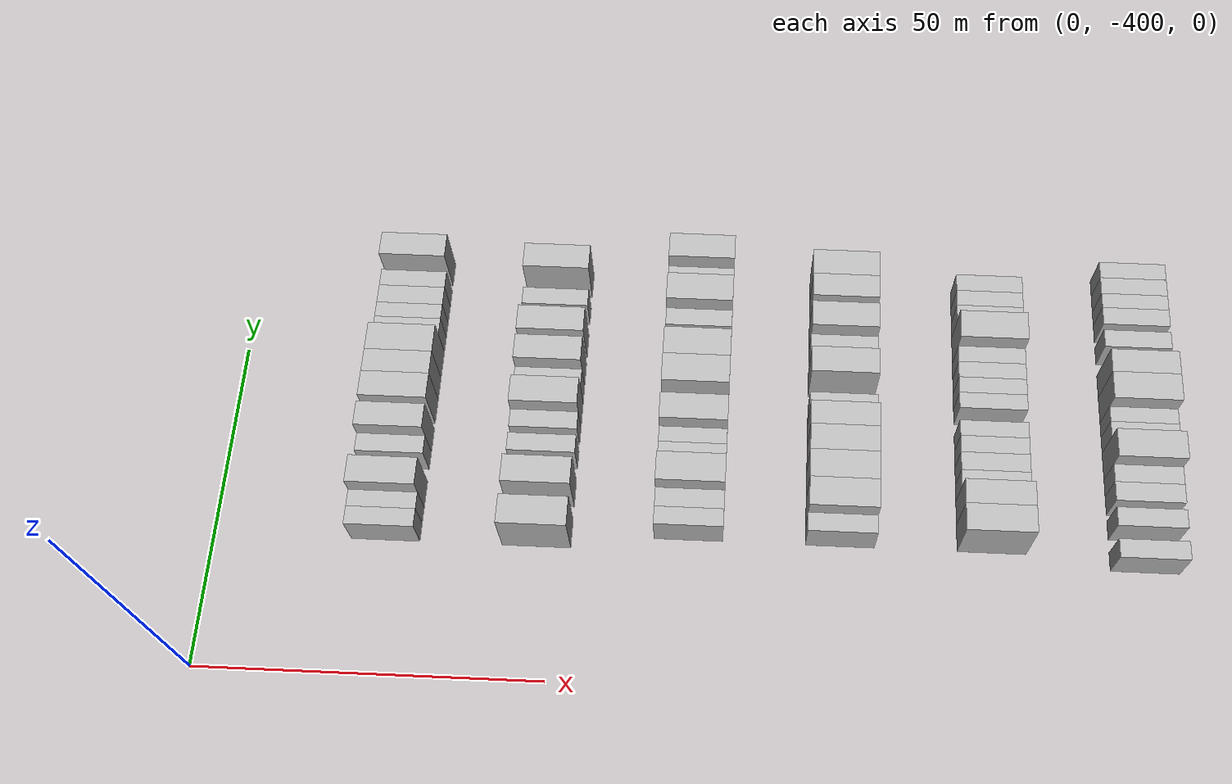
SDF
<sdf version="1.6">
 <world name="default">
  <model name="building_1">
   <static>1</static>
   <pose>25.0000 -378.6313 0 0.000000 0.000000 0.000000</pose>
   <link name="link">
    <pose>0 0 3.00 0 0 0</pose>
    <collision name="collision"><geometry><box><size>10.0000 2.7375 6.0000</size></box></geometry></collision>
    <visual name="visual">
     <cast_shadows>0</cast_shadows>
     <geometry><box><size>10.0000 2.7375 6.0000</size></box></geometry>
     <material>
      <script>
       <uri>model://HANNAS_wall/materials/scripts</uri>
       <uri>model://HANNAS_wall/materials/textures</uri>
       <name>vrc/HANNAS_wall</name>
      </script>
     </material>
    </visual>
   </link>
  </model>
  <model name="building_2">
   <static>1</static>
   <pose>25.0000 -375.9943 0 0.000000 0.000000 0.000000</pose>
   <link name="link">
    <pose>0 0 3.00 0 0 0</pose>
    <collision name="collision"><geometry><box><size>10.0000 2.5364 6.0000</size></box></geometry></collision>
    <visual name="visual">
     <cast_shadows>0</cast_shadows>
     <geometry><box><size>10.0000 2.5364 6.0000</size></box></geometry>
     <material>
      <script>
       <uri>model://HANNAS_wall/materials/scripts</uri>
       <uri>model://HANNAS_wall/materials/textures</uri>
       <name>vrc/HANNAS_wall</name>
      </script>
     </material>
    </visual>
   </link>
  </model>
  <model name="building_3">
   <static>1</static>
   <pose>25.0000 -372.6665 0 0.000000 0.000000 0.000000</pose>
   <link name="link">
    <pose>0 0 4.50 0 0 0</pose>
    <collision name="collision"><geometry><box><size>10.0000 4.1193 9.0000</size></box></geometry></collision>
    <visual name="visual">
     <cast_shadows>0</cast_shadows>
     <geometry><box><size>10.0000 4.1193 9.0000</size></box></geometry>
     <material>
      <script>
       <uri>model://HANNAS_wall/materials/scripts</uri>
       <uri>model://HANNAS_wall/materials/textures</uri>
       <name>vrc/HANNAS_wall</name>
      </script>
     </material>
    </visual>
   </link>
  </model>
  <model name="building_4">
   <static>1</static>
   <pose>25.0000 -367.2124 0 0.000000 0.000000 0.000000</pose>
   <link name="link">
    <pose>0 0 3.00 0 0 0</pose>
    <collision name="collision"><geometry><box><size>10.0000 2.7888 6.0000</size></box></geometry></collision>
    <visual name="visual">
     <cast_shadows>0</cast_shadows>
     <geometry><box><size>10.0000 2.7888 6.0000</size></box></geometry>
     <material>
      <script>
       <uri>model://HANNAS_wall/materials/scripts</uri>
       <uri>model://HANNAS_wall/materials/textures</uri>
       <name>vrc/HANNAS_wall</name>
      </script>
     </material>
    </visual>
   </link>
  </model>
  <model name="building_5">
   <static>1</static>
   <pose>25.0000 -363.9507 0 0.000000 0.000000 0.000000</pose>
   <link name="link">
    <pose>0 0 4.50 0 0 0</pose>
    <collision name="collision"><geometry><box><size>10.0000 3.7346 9.0000</size></box></geometry></collision>
    <visual name="visual">
     <cast_shadows>0</cast_shadows>
     <geometry><box><size>10.0000 3.7346 9.0000</size></box></geometry>
     <material>
      <script>
       <uri>model://HANNAS_wall/materials/scripts</uri>
       <uri>model://HANNAS_wall/materials/textures</uri>
       <name>vrc/HANNAS_wall</name>
      </script>
     </material>
    </visual>
   </link>
  </model>
  <model name="building_6">
   <static>1</static>
   <pose>25.0000 -359.0992 0 0.000000 0.000000 0.000000</pose>
   <link name="link">
    <pose>0 0 4.50 0 0 0</pose>
    <collision name="collision"><geometry><box><size>10.0000 3.9685 9.0000</size></box></geometry></collision>
    <visual name="visual">
     <cast_shadows>0</cast_shadows>
     <geometry><box><size>10.0000 3.9685 9.0000</size></box></geometry>
     <material>
      <script>
       <uri>model://HANNAS_wall/materials/scripts</uri>
       <uri>model://HANNAS_wall/materials/textures</uri>
       <name>vrc/HANNAS_wall</name>
      </script>
     </material>
    </visual>
   </link>
  </model>
  <model name="building_7">
   <static>1</static>
   <pose>25.0000 -355.3068 0 0.000000 0.000000 0.000000</pose>
   <link name="link">
    <pose>0 0 4.50 0 0 0</pose>
    <collision name="collision"><geometry><box><size>10.0000 3.6162 9.0000</size></box></geometry></collision>
    <visual name="visual">
     <cast_shadows>0</cast_shadows>
     <geometry><box><size>10.0000 3.6162 9.0000</size></box></geometry>
     <material>
      <script>
       <uri>model://HANNAS_wall/materials/scripts</uri>
       <uri>model://HANNAS_wall/materials/textures</uri>
       <name>vrc/HANNAS_wall</name>
      </script>
     </material>
    </visual>
   </link>
  </model>
  <model name="building_8">
   <static>1</static>
   <pose>25.0000 -351.3034 0 0.000000 0.000000 0.000000</pose>
   <link name="link">
    <pose>0 0 4.50 0 0 0</pose>
    <collision name="collision"><geometry><box><size>10.0000 4.3906 9.0000</size></box></geometry></collision>
    <visual name="visual">
     <cast_shadows>0</cast_shadows>
     <geometry><box><size>10.0000 4.3906 9.0000</size></box></geometry>
     <material>
      <script>
       <uri>model://HANNAS_wall/materials/scripts</uri>
       <uri>model://HANNAS_wall/materials/textures</uri>
       <name>vrc/HANNAS_wall</name>
      </script>
     </material>
    </visual>
   </link>
  </model>
  <model name="building_9">
   <static>1</static>
   <pose>25.0000 -347.7406 0 0.000000 0.000000 0.000000</pose>
   <link name="link">
    <pose>0 0 3.00 0 0 0</pose>
    <collision name="collision"><geometry><box><size>10.0000 2.7350 6.0000</size></box></geometry></collision>
    <visual name="visual">
     <cast_shadows>0</cast_shadows>
     <geometry><box><size>10.0000 2.7350 6.0000</size></box></geometry>
     <material>
      <script>
       <uri>model://HANNAS_wall/materials/scripts</uri>
       <uri>model://HANNAS_wall/materials/textures</uri>
       <name>vrc/HANNAS_wall</name>
      </script>
     </material>
    </visual>
   </link>
  </model>
  <model name="building_10">
   <static>1</static>
   <pose>25.0000 -345.1540 0 0.000000 0.000000 0.000000</pose>
   <link name="link">
    <pose>0 0 3.00 0 0 0</pose>
    <collision name="collision"><geometry><box><size>10.0000 2.4383 6.0000</size></box></geometry></collision>
    <visual name="visual">
     <cast_shadows>0</cast_shadows>
     <geometry><box><size>10.0000 2.4383 6.0000</size></box></geometry>
     <material>
      <script>
       <uri>model://HANNAS_wall/materials/scripts</uri>
       <uri>model://HANNAS_wall/materials/textures</uri>
       <name>vrc/HANNAS_wall</name>
      </script>
     </material>
    </visual>
   </link>
  </model>
  <model name="building_11">
   <static>1</static>
   <pose>25.0000 -342.4382 0 0.000000 0.000000 0.000000</pose>
   <link name="link">
    <pose>0 0 3.00 0 0 0</pose>
    <collision name="collision"><geometry><box><size>10.0000 2.9933 6.0000</size></box></geometry></collision>
    <visual name="visual">
     <cast_shadows>0</cast_shadows>
     <geometry><box><size>10.0000 2.9933 6.0000</size></box></geometry>
     <material>
      <script>
       <uri>model://HANNAS_wall/materials/scripts</uri>
       <uri>model://HANNAS_wall/materials/textures</uri>
       <name>vrc/HANNAS_wall</name>
      </script>
     </material>
    </visual>
   </link>
  </model>
  <model name="building_12">
   <static>1</static>
   <pose>25.0000 -339.5825 0 0.000000 0.000000 0.000000</pose>
   <link name="link">
    <pose>0 0 3.00 0 0 0</pose>
    <collision name="collision"><geometry><box><size>10.0000 2.7180 6.0000</size></box></geometry></collision>
    <visual name="visual">
     <cast_shadows>0</cast_shadows>
     <geometry><box><size>10.0000 2.7180 6.0000</size></box></geometry>
     <material>
      <script>
       <uri>model://HANNAS_wall/materials/scripts</uri>
       <uri>model://HANNAS_wall/materials/textures</uri>
       <name>vrc/HANNAS_wall</name>
      </script>
     </material>
    </visual>
   </link>
  </model>
  <model name="building_13">
   <static>1</static>
   <pose>25.0000 -335.3226 0 0.000000 0.000000 0.000000</pose>
   <link name="link">
    <pose>0 0 4.50 0 0 0</pose>
    <collision name="collision"><geometry><box><size>10.0000 3.8017 9.0000</size></box></geometry></collision>
    <visual name="visual">
     <cast_shadows>0</cast_shadows>
     <geometry><box><size>10.0000 3.8017 9.0000</size></box></geometry>
     <material>
      <script>
       <uri>model://HANNAS_wall/materials/scripts</uri>
       <uri>model://HANNAS_wall/materials/textures</uri>
       <name>vrc/HANNAS_wall</name>
      </script>
     </material>
    </visual>
   </link>
  </model>
  <model name="building_193">
   <static>1</static>
   <pose>47.0000 -377.8075 0 0.000000 0.000000 0.000000</pose>
   <link name="link">
    <pose>0 0 4.50 0 0 0</pose>
    <collision name="collision"><geometry><box><size>10.0000 4.3850 9.0000</size></box></geometry></collision>
    <visual name="visual">
     <cast_shadows>0</cast_shadows>
     <geometry><box><size>10.0000 4.3850 9.0000</size></box></geometry>
     <material>
      <script>
       <uri>model://HANNAS_wall/materials/scripts</uri>
       <uri>model://HANNAS_wall/materials/textures</uri>
       <name>vrc/HANNAS_wall</name>
      </script>
     </material>
    </visual>
   </link>
  </model>
  <model name="building_194">
   <static>1</static>
   <pose>47.0000 -371.5451 0 0.000000 0.000000 0.000000</pose>
   <link name="link">
    <pose>0 0 4.50 0 0 0</pose>
    <collision name="collision"><geometry><box><size>10.0000 4.1399 9.0000</size></box></geometry></collision>
    <visual name="visual">
     <cast_shadows>0</cast_shadows>
     <geometry><box><size>10.0000 4.1399 9.0000</size></box></geometry>
     <material>
      <script>
       <uri>model://HANNAS_wall/materials/scripts</uri>
       <uri>model://HANNAS_wall/materials/textures</uri>
       <name>vrc/HANNAS_wall</name>
      </script>
     </material>
    </visual>
   </link>
  </model>
  <model name="building_195">
   <static>1</static>
   <pose>47.0000 -366.0909 0 0.000000 0.000000 0.000000</pose>
   <link name="link">
    <pose>0 0 3.00 0 0 0</pose>
    <collision name="collision"><geometry><box><size>10.0000 2.7685 6.0000</size></box></geometry></collision>
    <visual name="visual">
     <cast_shadows>0</cast_shadows>
     <geometry><box><size>10.0000 2.7685 6.0000</size></box></geometry>
     <material>
      <script>
       <uri>model://HANNAS_wall/materials/scripts</uri>
       <uri>model://HANNAS_wall/materials/textures</uri>
       <name>vrc/HANNAS_wall</name>
      </script>
     </material>
    </visual>
   </link>
  </model>
  <model name="building_196">
   <static>1</static>
   <pose>47.0000 -362.3263 0 0.000000 0.000000 0.000000</pose>
   <link name="link">
    <pose>0 0 3.00 0 0 0</pose>
    <collision name="collision"><geometry><box><size>10.0000 2.7607 6.0000</size></box></geometry></collision>
    <visual name="visual">
     <cast_shadows>0</cast_shadows>
     <geometry><box><size>10.0000 2.7607 6.0000</size></box></geometry>
     <material>
      <script>
       <uri>model://HANNAS_wall/materials/scripts</uri>
       <uri>model://HANNAS_wall/materials/textures</uri>
       <name>vrc/HANNAS_wall</name>
      </script>
     </material>
    </visual>
   </link>
  </model>
  <model name="building_197">
   <static>1</static>
   <pose>47.0000 -358.8788 0 0.000000 0.000000 0.000000</pose>
   <link name="link">
    <pose>0 0 4.50 0 0 0</pose>
    <collision name="collision"><geometry><box><size>10.0000 4.1344 9.0000</size></box></geometry></collision>
    <visual name="visual">
     <cast_shadows>0</cast_shadows>
     <geometry><box><size>10.0000 4.1344 9.0000</size></box></geometry>
     <material>
      <script>
       <uri>model://HANNAS_wall/materials/scripts</uri>
       <uri>model://HANNAS_wall/materials/textures</uri>
       <name>vrc/HANNAS_wall</name>
      </script>
     </material>
    </visual>
   </link>
  </model>
  <model name="building_198">
   <static>1</static>
   <pose>47.0000 -355.3670 0 0.000000 0.000000 0.000000</pose>
   <link name="link">
    <pose>0 0 3.00 0 0 0</pose>
    <collision name="collision"><geometry><box><size>10.0000 2.8892 6.0000</size></box></geometry></collision>
    <visual name="visual">
     <cast_shadows>0</cast_shadows>
     <geometry><box><size>10.0000 2.8892 6.0000</size></box></geometry>
     <material>
      <script>
       <uri>model://HANNAS_wall/materials/scripts</uri>
       <uri>model://HANNAS_wall/materials/textures</uri>
       <name>vrc/HANNAS_wall</name>
      </script>
     </material>
    </visual>
   </link>
  </model>
  <model name="building_199">
   <static>1</static>
   <pose>47.0000 -351.9783 0 0.000000 0.000000 0.000000</pose>
   <link name="link">
    <pose>0 0 4.50 0 0 0</pose>
    <collision name="collision"><geometry><box><size>10.0000 3.8881 9.0000</size></box></geometry></collision>
    <visual name="visual">
     <cast_shadows>0</cast_shadows>
     <geometry><box><size>10.0000 3.8881 9.0000</size></box></geometry>
     <material>
      <script>
       <uri>model://HANNAS_wall/materials/scripts</uri>
       <uri>model://HANNAS_wall/materials/textures</uri>
       <name>vrc/HANNAS_wall</name>
      </script>
     </material>
    </visual>
   </link>
  </model>
  <model name="building_200">
   <static>1</static>
   <pose>47.0000 -347.0748 0 0.000000 0.000000 0.000000</pose>
   <link name="link">
    <pose>0 0 4.50 0 0 0</pose>
    <collision name="collision"><geometry><box><size>10.0000 3.9189 9.0000</size></box></geometry></collision>
    <visual name="visual">
     <cast_shadows>0</cast_shadows>
     <geometry><box><size>10.0000 3.9189 9.0000</size></box></geometry>
     <material>
      <script>
       <uri>model://HANNAS_wall/materials/scripts</uri>
       <uri>model://HANNAS_wall/materials/textures</uri>
       <name>vrc/HANNAS_wall</name>
      </script>
     </material>
    </visual>
   </link>
  </model>
  <model name="building_201">
   <static>1</static>
   <pose>47.0000 -341.7273 0 0.000000 0.000000 0.000000</pose>
   <link name="link">
    <pose>0 0 3.00 0 0 0</pose>
    <collision name="collision"><geometry><box><size>10.0000 2.7763 6.0000</size></box></geometry></collision>
    <visual name="visual">
     <cast_shadows>0</cast_shadows>
     <geometry><box><size>10.0000 2.7763 6.0000</size></box></geometry>
     <material>
      <script>
       <uri>model://HANNAS_wall/materials/scripts</uri>
       <uri>model://HANNAS_wall/materials/textures</uri>
       <name>vrc/HANNAS_wall</name>
      </script>
     </material>
    </visual>
   </link>
  </model>
  <model name="building_202">
   <static>1</static>
   <pose>47.0000 -336.3480 0 0.000000 0.000000 0.000000</pose>
   <link name="link">
    <pose>0 0 4.50 0 0 0</pose>
    <collision name="collision"><geometry><box><size>10.0000 3.9823 9.0000</size></box></geometry></collision>
    <visual name="visual">
     <cast_shadows>0</cast_shadows>
     <geometry><box><size>10.0000 3.9823 9.0000</size></box></geometry>
     <material>
      <script>
       <uri>model://HANNAS_wall/materials/scripts</uri>
       <uri>model://HANNAS_wall/materials/textures</uri>
       <name>vrc/HANNAS_wall</name>
      </script>
     </material>
    </visual>
   </link>
  </model>
  <model name="building_384">
   <static>1</static>
   <pose>69.0000 -376.6349 0 0.000000 0.000000 0.000000</pose>
   <link name="link">
    <pose>0 0 3.00 0 0 0</pose>
    <collision name="collision"><geometry><box><size>10.0000 2.7301 6.0000</size></box></geometry></collision>
    <visual name="visual">
     <cast_shadows>0</cast_shadows>
     <geometry><box><size>10.0000 2.7301 6.0000</size></box></geometry>
     <material>
      <script>
       <uri>model://HANNAS_wall/materials/scripts</uri>
       <uri>model://HANNAS_wall/materials/textures</uri>
       <name>vrc/HANNAS_wall</name>
      </script>
     </material>
    </visual>
   </link>
  </model>
  <model name="building_385">
   <static>1</static>
   <pose>69.0000 -373.8189 0 0.000000 0.000000 0.000000</pose>
   <link name="link">
    <pose>0 0 3.00 0 0 0</pose>
    <collision name="collision"><geometry><box><size>10.0000 2.9020 6.0000</size></box></geometry></collision>
    <visual name="visual">
     <cast_shadows>0</cast_shadows>
     <geometry><box><size>10.0000 2.9020 6.0000</size></box></geometry>
     <material>
      <script>
       <uri>model://HANNAS_wall/materials/scripts</uri>
       <uri>model://HANNAS_wall/materials/textures</uri>
       <name>vrc/HANNAS_wall</name>
      </script>
     </material>
    </visual>
   </link>
  </model>
  <model name="building_386">
   <static>1</static>
   <pose>69.0000 -370.1787 0 0.000000 0.000000 0.000000</pose>
   <link name="link">
    <pose>0 0 4.50 0 0 0</pose>
    <collision name="collision"><geometry><box><size>10.0000 4.3783 9.0000</size></box></geometry></collision>
    <visual name="visual">
     <cast_shadows>0</cast_shadows>
     <geometry><box><size>10.0000 4.3783 9.0000</size></box></geometry>
     <material>
      <script>
       <uri>model://HANNAS_wall/materials/scripts</uri>
       <uri>model://HANNAS_wall/materials/textures</uri>
       <name>vrc/HANNAS_wall</name>
      </script>
     </material>
    </visual>
   </link>
  </model>
  <model name="building_387">
   <static>1</static>
   <pose>69.0000 -366.5490 0 0.000000 0.000000 0.000000</pose>
   <link name="link">
    <pose>0 0 3.00 0 0 0</pose>
    <collision name="collision"><geometry><box><size>10.0000 2.8812 6.0000</size></box></geometry></collision>
    <visual name="visual">
     <cast_shadows>0</cast_shadows>
     <geometry><box><size>10.0000 2.8812 6.0000</size></box></geometry>
     <material>
      <script>
       <uri>model://HANNAS_wall/materials/scripts</uri>
       <uri>model://HANNAS_wall/materials/textures</uri>
       <name>vrc/HANNAS_wall</name>
      </script>
     </material>
    </visual>
   </link>
  </model>
  <model name="building_388">
   <static>1</static>
   <pose>69.0000 -363.8894 0 0.000000 0.000000 0.000000</pose>
   <link name="link">
    <pose>0 0 3.00 0 0 0</pose>
    <collision name="collision"><geometry><box><size>10.0000 2.4381 6.0000</size></box></geometry></collision>
    <visual name="visual">
     <cast_shadows>0</cast_shadows>
     <geometry><box><size>10.0000 2.4381 6.0000</size></box></geometry>
     <material>
      <script>
       <uri>model://HANNAS_wall/materials/scripts</uri>
       <uri>model://HANNAS_wall/materials/textures</uri>
       <name>vrc/HANNAS_wall</name>
      </script>
     </material>
    </visual>
   </link>
  </model>
  <model name="building_389">
   <static>1</static>
   <pose>69.0000 -360.6346 0 0.000000 0.000000 0.000000</pose>
   <link name="link">
    <pose>0 0 4.50 0 0 0</pose>
    <collision name="collision"><geometry><box><size>10.0000 4.0715 9.0000</size></box></geometry></collision>
    <visual name="visual">
     <cast_shadows>0</cast_shadows>
     <geometry><box><size>10.0000 4.0715 9.0000</size></box></geometry>
     <material>
      <script>
       <uri>model://HANNAS_wall/materials/scripts</uri>
       <uri>model://HANNAS_wall/materials/textures</uri>
       <name>vrc/HANNAS_wall</name>
      </script>
     </material>
    </visual>
   </link>
  </model>
  <model name="building_390">
   <static>1</static>
   <pose>69.0000 -354.3821 0 0.000000 0.000000 0.000000</pose>
   <link name="link">
    <pose>0 0 4.50 0 0 0</pose>
    <collision name="collision"><geometry><box><size>10.0000 4.4337 9.0000</size></box></geometry></collision>
    <visual name="visual">
     <cast_shadows>0</cast_shadows>
     <geometry><box><size>10.0000 4.4337 9.0000</size></box></geometry>
     <material>
      <script>
       <uri>model://HANNAS_wall/materials/scripts</uri>
       <uri>model://HANNAS_wall/materials/textures</uri>
       <name>vrc/HANNAS_wall</name>
      </script>
     </material>
    </visual>
   </link>
  </model>
  <model name="building_391">
   <static>1</static>
   <pose>69.0000 -349.9564 0 0.000000 0.000000 0.000000</pose>
   <link name="link">
    <pose>0 0 4.50 0 0 0</pose>
    <collision name="collision"><geometry><box><size>10.0000 4.4177 9.0000</size></box></geometry></collision>
    <visual name="visual">
     <cast_shadows>0</cast_shadows>
     <geometry><box><size>10.0000 4.4177 9.0000</size></box></geometry>
     <material>
      <script>
       <uri>model://HANNAS_wall/materials/scripts</uri>
       <uri>model://HANNAS_wall/materials/textures</uri>
       <name>vrc/HANNAS_wall</name>
      </script>
     </material>
    </visual>
   </link>
  </model>
  <model name="building_392">
   <static>1</static>
   <pose>69.0000 -344.3345 0 0.000000 0.000000 0.000000</pose>
   <link name="link">
    <pose>0 0 3.00 0 0 0</pose>
    <collision name="collision"><geometry><box><size>10.0000 2.8261 6.0000</size></box></geometry></collision>
    <visual name="visual">
     <cast_shadows>0</cast_shadows>
     <geometry><box><size>10.0000 2.8261 6.0000</size></box></geometry>
     <material>
      <script>
       <uri>model://HANNAS_wall/materials/scripts</uri>
       <uri>model://HANNAS_wall/materials/textures</uri>
       <name>vrc/HANNAS_wall</name>
      </script>
     </material>
    </visual>
   </link>
  </model>
  <model name="building_393">
   <static>1</static>
   <pose>69.0000 -340.7247 0 0.000000 0.000000 0.000000</pose>
   <link name="link">
    <pose>0 0 4.50 0 0 0</pose>
    <collision name="collision"><geometry><box><size>10.0000 4.3935 9.0000</size></box></geometry></collision>
    <visual name="visual">
     <cast_shadows>0</cast_shadows>
     <geometry><box><size>10.0000 4.3935 9.0000</size></box></geometry>
     <material>
      <script>
       <uri>model://HANNAS_wall/materials/scripts</uri>
       <uri>model://HANNAS_wall/materials/textures</uri>
       <name>vrc/HANNAS_wall</name>
      </script>
     </material>
    </visual>
   </link>
  </model>
  <model name="building_394">
   <static>1</static>
   <pose>69.0000 -337.0559 0 0.000000 0.000000 0.000000</pose>
   <link name="link">
    <pose>0 0 3.00 0 0 0</pose>
    <collision name="collision"><geometry><box><size>10.0000 2.9442 6.0000</size></box></geometry></collision>
    <visual name="visual">
     <cast_shadows>0</cast_shadows>
     <geometry><box><size>10.0000 2.9442 6.0000</size></box></geometry>
     <material>
      <script>
       <uri>model://HANNAS_wall/materials/scripts</uri>
       <uri>model://HANNAS_wall/materials/textures</uri>
       <name>vrc/HANNAS_wall</name>
      </script>
     </material>
    </visual>
   </link>
  </model>
  <model name="building_395">
   <static>1</static>
   <pose>69.0000 -333.5737 0 0.000000 0.000000 0.000000</pose>
   <link name="link">
    <pose>0 0 4.50 0 0 0</pose>
    <collision name="collision"><geometry><box><size>10.0000 4.0201 9.0000</size></box></geometry></collision>
    <visual name="visual">
     <cast_shadows>0</cast_shadows>
     <geometry><box><size>10.0000 4.0201 9.0000</size></box></geometry>
     <material>
      <script>
       <uri>model://HANNAS_wall/materials/scripts</uri>
       <uri>model://HANNAS_wall/materials/textures</uri>
       <name>vrc/HANNAS_wall</name>
      </script>
     </material>
    </visual>
   </link>
  </model>
  <model name="building_565">
   <static>1</static>
   <pose>91.0000 -376.6132 0 0.000000 0.000000 0.000000</pose>
   <link name="link">
    <pose>0 0 3.00 0 0 0</pose>
    <collision name="collision"><geometry><box><size>10.0000 2.7736 6.0000</size></box></geometry></collision>
    <visual name="visual">
     <cast_shadows>0</cast_shadows>
     <geometry><box><size>10.0000 2.7736 6.0000</size></box></geometry>
     <material>
      <script>
       <uri>model://HANNAS_wall/materials/scripts</uri>
       <uri>model://HANNAS_wall/materials/textures</uri>
       <name>vrc/HANNAS_wall</name>
      </script>
     </material>
    </visual>
   </link>
  </model>
  <model name="building_566">
   <static>1</static>
   <pose>91.0000 -373.0504 0 0.000000 0.000000 0.000000</pose>
   <link name="link">
    <pose>0 0 4.50 0 0 0</pose>
    <collision name="collision"><geometry><box><size>10.0000 4.3521 9.0000</size></box></geometry></collision>
    <visual name="visual">
     <cast_shadows>0</cast_shadows>
     <geometry><box><size>10.0000 4.3521 9.0000</size></box></geometry>
     <material>
      <script>
       <uri>model://HANNAS_wall/materials/scripts</uri>
       <uri>model://HANNAS_wall/materials/textures</uri>
       <name>vrc/HANNAS_wall</name>
      </script>
     </material>
    </visual>
   </link>
  </model>
  <model name="building_567">
   <static>1</static>
   <pose>91.0000 -368.7282 0 0.000000 0.000000 0.000000</pose>
   <link name="link">
    <pose>0 0 4.50 0 0 0</pose>
    <collision name="collision"><geometry><box><size>10.0000 4.2922 9.0000</size></box></geometry></collision>
    <visual name="visual">
     <cast_shadows>0</cast_shadows>
     <geometry><box><size>10.0000 4.2922 9.0000</size></box></geometry>
     <material>
      <script>
       <uri>model://HANNAS_wall/materials/scripts</uri>
       <uri>model://HANNAS_wall/materials/textures</uri>
       <name>vrc/HANNAS_wall</name>
      </script>
     </material>
    </visual>
   </link>
  </model>
  <model name="building_568">
   <static>1</static>
   <pose>91.0000 -364.5865 0 0.000000 0.000000 0.000000</pose>
   <link name="link">
    <pose>0 0 4.50 0 0 0</pose>
    <collision name="collision"><geometry><box><size>10.0000 3.9912 9.0000</size></box></geometry></collision>
    <visual name="visual">
     <cast_shadows>0</cast_shadows>
     <geometry><box><size>10.0000 3.9912 9.0000</size></box></geometry>
     <material>
      <script>
       <uri>model://HANNAS_wall/materials/scripts</uri>
       <uri>model://HANNAS_wall/materials/textures</uri>
       <name>vrc/HANNAS_wall</name>
      </script>
     </material>
    </visual>
   </link>
  </model>
  <model name="building_569">
   <static>1</static>
   <pose>91.0000 -360.7364 0 0.000000 0.000000 0.000000</pose>
   <link name="link">
    <pose>0 0 4.50 0 0 0</pose>
    <collision name="collision"><geometry><box><size>10.0000 3.7089 9.0000</size></box></geometry></collision>
    <visual name="visual">
     <cast_shadows>0</cast_shadows>
     <geometry><box><size>10.0000 3.7089 9.0000</size></box></geometry>
     <material>
      <script>
       <uri>model://HANNAS_wall/materials/scripts</uri>
       <uri>model://HANNAS_wall/materials/textures</uri>
       <name>vrc/HANNAS_wall</name>
      </script>
     </material>
    </visual>
   </link>
  </model>
  <model name="building_570">
   <static>1</static>
   <pose>91.0000 -357.4823 0 0.000000 0.000000 0.000000</pose>
   <link name="link">
    <pose>0 0 3.00 0 0 0</pose>
    <collision name="collision"><geometry><box><size>10.0000 2.7993 6.0000</size></box></geometry></collision>
    <visual name="visual">
     <cast_shadows>0</cast_shadows>
     <geometry><box><size>10.0000 2.7993 6.0000</size></box></geometry>
     <material>
      <script>
       <uri>model://HANNAS_wall/materials/scripts</uri>
       <uri>model://HANNAS_wall/materials/textures</uri>
       <name>vrc/HANNAS_wall</name>
      </script>
     </material>
    </visual>
   </link>
  </model>
  <model name="building_571">
   <static>1</static>
   <pose>91.0000 -352.0518 0 0.000000 0.000000 0.000000</pose>
   <link name="link">
    <pose>0 0 4.50 0 0 0</pose>
    <collision name="collision"><geometry><box><size>10.0000 4.0617 9.0000</size></box></geometry></collision>
    <visual name="visual">
     <cast_shadows>0</cast_shadows>
     <geometry><box><size>10.0000 4.0617 9.0000</size></box></geometry>
     <material>
      <script>
       <uri>model://HANNAS_wall/materials/scripts</uri>
       <uri>model://HANNAS_wall/materials/textures</uri>
       <name>vrc/HANNAS_wall</name>
      </script>
     </material>
    </visual>
   </link>
  </model>
  <model name="building_572">
   <static>1</static>
   <pose>91.0000 -347.7153 0 0.000000 0.000000 0.000000</pose>
   <link name="link">
    <pose>0 0 3.00 0 0 0</pose>
    <collision name="collision"><geometry><box><size>10.0000 2.6113 6.0000</size></box></geometry></collision>
    <visual name="visual">
     <cast_shadows>0</cast_shadows>
     <geometry><box><size>10.0000 2.6113 6.0000</size></box></geometry>
     <material>
      <script>
       <uri>model://HANNAS_wall/materials/scripts</uri>
       <uri>model://HANNAS_wall/materials/textures</uri>
       <name>vrc/HANNAS_wall</name>
      </script>
     </material>
    </visual>
   </link>
  </model>
  <model name="building_573">
   <static>1</static>
   <pose>91.0000 -344.3890 0 0.000000 0.000000 0.000000</pose>
   <link name="link">
    <pose>0 0 4.50 0 0 0</pose>
    <collision name="collision"><geometry><box><size>10.0000 4.0413 9.0000</size></box></geometry></collision>
    <visual name="visual">
     <cast_shadows>0</cast_shadows>
     <geometry><box><size>10.0000 4.0413 9.0000</size></box></geometry>
     <material>
      <script>
       <uri>model://HANNAS_wall/materials/scripts</uri>
       <uri>model://HANNAS_wall/materials/textures</uri>
       <name>vrc/HANNAS_wall</name>
      </script>
     </material>
    </visual>
   </link>
  </model>
  <model name="building_574">
   <static>1</static>
   <pose>91.0000 -339.4903 0 0.000000 0.000000 0.000000</pose>
   <link name="link">
    <pose>0 0 4.50 0 0 0</pose>
    <collision name="collision"><geometry><box><size>10.0000 3.7562 9.0000</size></box></geometry></collision>
    <visual name="visual">
     <cast_shadows>0</cast_shadows>
     <geometry><box><size>10.0000 3.7562 9.0000</size></box></geometry>
     <material>
      <script>
       <uri>model://HANNAS_wall/materials/scripts</uri>
       <uri>model://HANNAS_wall/materials/textures</uri>
       <name>vrc/HANNAS_wall</name>
      </script>
     </material>
    </visual>
   </link>
  </model>
  <model name="building_575">
   <static>1</static>
   <pose>91.0000 -335.5371 0 0.000000 0.000000 0.000000</pose>
   <link name="link">
    <pose>0 0 4.50 0 0 0</pose>
    <collision name="collision"><geometry><box><size>10.0000 4.1500 9.0000</size></box></geometry></collision>
    <visual name="visual">
     <cast_shadows>0</cast_shadows>
     <geometry><box><size>10.0000 4.1500 9.0000</size></box></geometry>
     <material>
      <script>
       <uri>model://HANNAS_wall/materials/scripts</uri>
       <uri>model://HANNAS_wall/materials/textures</uri>
       <name>vrc/HANNAS_wall</name>
      </script>
     </material>
    </visual>
   </link>
  </model>
  <model name="building_748">
   <static>1</static>
   <pose>113.0000 -375.9701 0 0.000000 0.000000 0.000000</pose>
   <link name="link">
    <pose>0 0 4.50 0 0 0</pose>
    <collision name="collision"><geometry><box><size>10.0000 4.0599 9.0000</size></box></geometry></collision>
    <visual name="visual">
     <cast_shadows>0</cast_shadows>
     <geometry><box><size>10.0000 4.0599 9.0000</size></box></geometry>
     <material>
      <script>
       <uri>model://HANNAS_wall/materials/scripts</uri>
       <uri>model://HANNAS_wall/materials/textures</uri>
       <name>vrc/HANNAS_wall</name>
      </script>
     </material>
    </visual>
   </link>
  </model>
  <model name="building_749">
   <static>1</static>
   <pose>113.0000 -372.0926 0 0.000000 0.000000 0.000000</pose>
   <link name="link">
    <pose>0 0 4.50 0 0 0</pose>
    <collision name="collision"><geometry><box><size>10.0000 3.6950 9.0000</size></box></geometry></collision>
    <visual name="visual">
     <cast_shadows>0</cast_shadows>
     <geometry><box><size>10.0000 3.6950 9.0000</size></box></geometry>
     <material>
      <script>
       <uri>model://HANNAS_wall/materials/scripts</uri>
       <uri>model://HANNAS_wall/materials/textures</uri>
       <name>vrc/HANNAS_wall</name>
      </script>
     </material>
    </visual>
   </link>
  </model>
  <model name="building_750">
   <static>1</static>
   <pose>113.0000 -368.9075 0 0.000000 0.000000 0.000000</pose>
   <link name="link">
    <pose>0 0 3.00 0 0 0</pose>
    <collision name="collision"><geometry><box><size>10.0000 2.6752 6.0000</size></box></geometry></collision>
    <visual name="visual">
     <cast_shadows>0</cast_shadows>
     <geometry><box><size>10.0000 2.6752 6.0000</size></box></geometry>
     <material>
      <script>
       <uri>model://HANNAS_wall/materials/scripts</uri>
       <uri>model://HANNAS_wall/materials/textures</uri>
       <name>vrc/HANNAS_wall</name>
      </script>
     </material>
    </visual>
   </link>
  </model>
  <model name="building_751">
   <static>1</static>
   <pose>113.0000 -366.1729 0 0.000000 0.000000 0.000000</pose>
   <link name="link">
    <pose>0 0 3.00 0 0 0</pose>
    <collision name="collision"><geometry><box><size>10.0000 2.7940 6.0000</size></box></geometry></collision>
    <visual name="visual">
     <cast_shadows>0</cast_shadows>
     <geometry><box><size>10.0000 2.7940 6.0000</size></box></geometry>
     <material>
      <script>
       <uri>model://HANNAS_wall/materials/scripts</uri>
       <uri>model://HANNAS_wall/materials/textures</uri>
       <name>vrc/HANNAS_wall</name>
      </script>
     </material>
    </visual>
   </link>
  </model>
  <model name="building_752">
   <static>1</static>
   <pose>113.0000 -363.4634 0 0.000000 0.000000 0.000000</pose>
   <link name="link">
    <pose>0 0 3.00 0 0 0</pose>
    <collision name="collision"><geometry><box><size>10.0000 2.6251 6.0000</size></box></geometry></collision>
    <visual name="visual">
     <cast_shadows>0</cast_shadows>
     <geometry><box><size>10.0000 2.6251 6.0000</size></box></geometry>
     <material>
      <script>
       <uri>model://HANNAS_wall/materials/scripts</uri>
       <uri>model://HANNAS_wall/materials/textures</uri>
       <name>vrc/HANNAS_wall</name>
      </script>
     </material>
    </visual>
   </link>
  </model>
  <model name="building_753">
   <static>1</static>
   <pose>113.0000 -360.9116 0 0.000000 0.000000 0.000000</pose>
   <link name="link">
    <pose>0 0 3.00 0 0 0</pose>
    <collision name="collision"><geometry><box><size>10.0000 2.4786 6.0000</size></box></geometry></collision>
    <visual name="visual">
     <cast_shadows>0</cast_shadows>
     <geometry><box><size>10.0000 2.4786 6.0000</size></box></geometry>
     <material>
      <script>
       <uri>model://HANNAS_wall/materials/scripts</uri>
       <uri>model://HANNAS_wall/materials/textures</uri>
       <name>vrc/HANNAS_wall</name>
      </script>
     </material>
    </visual>
   </link>
  </model>
  <model name="building_754">
   <static>1</static>
   <pose>113.0000 -356.4107 0 0.000000 0.000000 0.000000</pose>
   <link name="link">
    <pose>0 0 3.00 0 0 0</pose>
    <collision name="collision"><geometry><box><size>10.0000 2.5232 6.0000</size></box></geometry></collision>
    <visual name="visual">
     <cast_shadows>0</cast_shadows>
     <geometry><box><size>10.0000 2.5232 6.0000</size></box></geometry>
     <material>
      <script>
       <uri>model://HANNAS_wall/materials/scripts</uri>
       <uri>model://HANNAS_wall/materials/textures</uri>
       <name>vrc/HANNAS_wall</name>
      </script>
     </material>
    </visual>
   </link>
  </model>
  <model name="building_755">
   <static>1</static>
   <pose>113.0000 -353.8763 0 0.000000 0.000000 0.000000</pose>
   <link name="link">
    <pose>0 0 3.00 0 0 0</pose>
    <collision name="collision"><geometry><box><size>10.0000 2.5457 6.0000</size></box></geometry></collision>
    <visual name="visual">
     <cast_shadows>0</cast_shadows>
     <geometry><box><size>10.0000 2.5457 6.0000</size></box></geometry>
     <material>
      <script>
       <uri>model://HANNAS_wall/materials/scripts</uri>
       <uri>model://HANNAS_wall/materials/textures</uri>
       <name>vrc/HANNAS_wall</name>
      </script>
     </material>
    </visual>
   </link>
  </model>
  <model name="building_756">
   <static>1</static>
   <pose>113.0000 -351.3170 0 0.000000 0.000000 0.000000</pose>
   <link name="link">
    <pose>0 0 3.00 0 0 0</pose>
    <collision name="collision"><geometry><box><size>10.0000 2.5728 6.0000</size></box></geometry></collision>
    <visual name="visual">
     <cast_shadows>0</cast_shadows>
     <geometry><box><size>10.0000 2.5728 6.0000</size></box></geometry>
     <material>
      <script>
       <uri>model://HANNAS_wall/materials/scripts</uri>
       <uri>model://HANNAS_wall/materials/textures</uri>
       <name>vrc/HANNAS_wall</name>
      </script>
     </material>
    </visual>
   </link>
  </model>
  <model name="building_757">
   <static>1</static>
   <pose>113.0000 -348.7274 0 0.000000 0.000000 0.000000</pose>
   <link name="link">
    <pose>0 0 3.00 0 0 0</pose>
    <collision name="collision"><geometry><box><size>10.0000 2.6064 6.0000</size></box></geometry></collision>
    <visual name="visual">
     <cast_shadows>0</cast_shadows>
     <geometry><box><size>10.0000 2.6064 6.0000</size></box></geometry>
     <material>
      <script>
       <uri>model://HANNAS_wall/materials/scripts</uri>
       <uri>model://HANNAS_wall/materials/textures</uri>
       <name>vrc/HANNAS_wall</name>
      </script>
     </material>
    </visual>
   </link>
  </model>
  <model name="building_758">
   <static>1</static>
   <pose>113.0000 -345.2241 0 0.000000 0.000000 0.000000</pose>
   <link name="link">
    <pose>0 0 4.50 0 0 0</pose>
    <collision name="collision"><geometry><box><size>10.0000 4.4003 9.0000</size></box></geometry></collision>
    <visual name="visual">
     <cast_shadows>0</cast_shadows>
     <geometry><box><size>10.0000 4.4003 9.0000</size></box></geometry>
     <material>
      <script>
       <uri>model://HANNAS_wall/materials/scripts</uri>
       <uri>model://HANNAS_wall/materials/textures</uri>
       <name>vrc/HANNAS_wall</name>
      </script>
     </material>
    </visual>
   </link>
  </model>
  <model name="building_759">
   <static>1</static>
   <pose>113.0000 -341.7209 0 0.000000 0.000000 0.000000</pose>
   <link name="link">
    <pose>0 0 3.00 0 0 0</pose>
    <collision name="collision"><geometry><box><size>10.0000 2.6061 6.0000</size></box></geometry></collision>
    <visual name="visual">
     <cast_shadows>0</cast_shadows>
     <geometry><box><size>10.0000 2.6061 6.0000</size></box></geometry>
     <material>
      <script>
       <uri>model://HANNAS_wall/materials/scripts</uri>
       <uri>model://HANNAS_wall/materials/textures</uri>
       <name>vrc/HANNAS_wall</name>
      </script>
     </material>
    </visual>
   </link>
  </model>
  <model name="building_760">
   <static>1</static>
   <pose>113.0000 -339.1397 0 0.000000 0.000000 0.000000</pose>
   <link name="link">
    <pose>0 0 3.00 0 0 0</pose>
    <collision name="collision"><geometry><box><size>10.0000 2.5563 6.0000</size></box></geometry></collision>
    <visual name="visual">
     <cast_shadows>0</cast_shadows>
     <geometry><box><size>10.0000 2.5563 6.0000</size></box></geometry>
     <material>
      <script>
       <uri>model://HANNAS_wall/materials/scripts</uri>
       <uri>model://HANNAS_wall/materials/textures</uri>
       <name>vrc/HANNAS_wall</name>
      </script>
     </material>
    </visual>
   </link>
  </model>
  <model name="building_761">
   <static>1</static>
   <pose>113.0000 -336.4740 0 0.000000 0.000000 0.000000</pose>
   <link name="link">
    <pose>0 0 3.00 0 0 0</pose>
    <collision name="collision"><geometry><box><size>10.0000 2.7750 6.0000</size></box></geometry></collision>
    <visual name="visual">
     <cast_shadows>0</cast_shadows>
     <geometry><box><size>10.0000 2.7750 6.0000</size></box></geometry>
     <material>
      <script>
       <uri>model://HANNAS_wall/materials/scripts</uri>
       <uri>model://HANNAS_wall/materials/textures</uri>
       <name>vrc/HANNAS_wall</name>
      </script>
     </material>
    </visual>
   </link>
  </model>
  <model name="building_936">
   <static>1</static>
   <pose>135.0000 -378.6036 0 0.000000 0.000000 0.000000</pose>
   <link name="link">
    <pose>0 0 3.00 0 0 0</pose>
    <collision name="collision"><geometry><box><size>10.0000 2.7928 6.0000</size></box></geometry></collision>
    <visual name="visual">
     <cast_shadows>0</cast_shadows>
     <geometry><box><size>10.0000 2.7928 6.0000</size></box></geometry>
     <material>
      <script>
       <uri>model://HANNAS_wall/materials/scripts</uri>
       <uri>model://HANNAS_wall/materials/textures</uri>
       <name>vrc/HANNAS_wall</name>
      </script>
     </material>
    </visual>
   </link>
  </model>
  <model name="building_937">
   <static>1</static>
   <pose>135.0000 -373.7851 0 0.000000 0.000000 0.000000</pose>
   <link name="link">
    <pose>0 0 3.00 0 0 0</pose>
    <collision name="collision"><geometry><box><size>10.0000 2.8442 6.0000</size></box></geometry></collision>
    <visual name="visual">
     <cast_shadows>0</cast_shadows>
     <geometry><box><size>10.0000 2.8442 6.0000</size></box></geometry>
     <material>
      <script>
       <uri>model://HANNAS_wall/materials/scripts</uri>
       <uri>model://HANNAS_wall/materials/textures</uri>
       <name>vrc/HANNAS_wall</name>
      </script>
     </material>
    </visual>
   </link>
  </model>
  <model name="building_938">
   <static>1</static>
   <pose>135.0000 -369.9095 0 0.000000 0.000000 0.000000</pose>
   <link name="link">
    <pose>0 0 3.00 0 0 0</pose>
    <collision name="collision"><geometry><box><size>10.0000 2.9070 6.0000</size></box></geometry></collision>
    <visual name="visual">
     <cast_shadows>0</cast_shadows>
     <geometry><box><size>10.0000 2.9070 6.0000</size></box></geometry>
     <material>
      <script>
       <uri>model://HANNAS_wall/materials/scripts</uri>
       <uri>model://HANNAS_wall/materials/textures</uri>
       <name>vrc/HANNAS_wall</name>
      </script>
     </material>
    </visual>
   </link>
  </model>
  <model name="building_939">
   <static>1</static>
   <pose>135.0000 -367.0913 0 0.000000 0.000000 0.000000</pose>
   <link name="link">
    <pose>0 0 3.00 0 0 0</pose>
    <collision name="collision"><geometry><box><size>10.0000 2.7294 6.0000</size></box></geometry></collision>
    <visual name="visual">
     <cast_shadows>0</cast_shadows>
     <geometry><box><size>10.0000 2.7294 6.0000</size></box></geometry>
     <material>
      <script>
       <uri>model://HANNAS_wall/materials/scripts</uri>
       <uri>model://HANNAS_wall/materials/textures</uri>
       <name>vrc/HANNAS_wall</name>
      </script>
     </material>
    </visual>
   </link>
  </model>
  <model name="building_940">
   <static>1</static>
   <pose>135.0000 -363.5692 0 0.000000 0.000000 0.000000</pose>
   <link name="link">
    <pose>0 0 4.50 0 0 0</pose>
    <collision name="collision"><geometry><box><size>10.0000 4.3147 9.0000</size></box></geometry></collision>
    <visual name="visual">
     <cast_shadows>0</cast_shadows>
     <geometry><box><size>10.0000 4.3147 9.0000</size></box></geometry>
     <material>
      <script>
       <uri>model://HANNAS_wall/materials/scripts</uri>
       <uri>model://HANNAS_wall/materials/textures</uri>
       <name>vrc/HANNAS_wall</name>
      </script>
     </material>
    </visual>
   </link>
  </model>
  <model name="building_941">
   <static>1</static>
   <pose>135.0000 -360.1550 0 0.000000 0.000000 0.000000</pose>
   <link name="link">
    <pose>0 0 3.00 0 0 0</pose>
    <collision name="collision"><geometry><box><size>10.0000 2.5138 6.0000</size></box></geometry></collision>
    <visual name="visual">
     <cast_shadows>0</cast_shadows>
     <geometry><box><size>10.0000 2.5138 6.0000</size></box></geometry>
     <material>
      <script>
       <uri>model://HANNAS_wall/materials/scripts</uri>
       <uri>model://HANNAS_wall/materials/textures</uri>
       <name>vrc/HANNAS_wall</name>
      </script>
     </material>
    </visual>
   </link>
  </model>
  <model name="building_942">
   <static>1</static>
   <pose>135.0000 -357.6834 0 0.000000 0.000000 0.000000</pose>
   <link name="link">
    <pose>0 0 3.00 0 0 0</pose>
    <collision name="collision"><geometry><box><size>10.0000 2.4293 6.0000</size></box></geometry></collision>
    <visual name="visual">
     <cast_shadows>0</cast_shadows>
     <geometry><box><size>10.0000 2.4293 6.0000</size></box></geometry>
     <material>
      <script>
       <uri>model://HANNAS_wall/materials/scripts</uri>
       <uri>model://HANNAS_wall/materials/textures</uri>
       <name>vrc/HANNAS_wall</name>
      </script>
     </material>
    </visual>
   </link>
  </model>
  <model name="building_943">
   <static>1</static>
   <pose>135.0000 -354.3344 0 0.000000 0.000000 0.000000</pose>
   <link name="link">
    <pose>0 0 4.50 0 0 0</pose>
    <collision name="collision"><geometry><box><size>10.0000 4.2689 9.0000</size></box></geometry></collision>
    <visual name="visual">
     <cast_shadows>0</cast_shadows>
     <geometry><box><size>10.0000 4.2689 9.0000</size></box></geometry>
     <material>
      <script>
       <uri>model://HANNAS_wall/materials/scripts</uri>
       <uri>model://HANNAS_wall/materials/textures</uri>
       <name>vrc/HANNAS_wall</name>
      </script>
     </material>
    </visual>
   </link>
  </model>
  <model name="building_944">
   <static>1</static>
   <pose>135.0000 -350.3467 0 0.000000 0.000000 0.000000</pose>
   <link name="link">
    <pose>0 0 4.50 0 0 0</pose>
    <collision name="collision"><geometry><box><size>10.0000 3.7064 9.0000</size></box></geometry></collision>
    <visual name="visual">
     <cast_shadows>0</cast_shadows>
     <geometry><box><size>10.0000 3.7064 9.0000</size></box></geometry>
     <material>
      <script>
       <uri>model://HANNAS_wall/materials/scripts</uri>
       <uri>model://HANNAS_wall/materials/textures</uri>
       <name>vrc/HANNAS_wall</name>
      </script>
     </material>
    </visual>
   </link>
  </model>
  <model name="building_945">
   <static>1</static>
   <pose>135.0000 -345.0855 0 0.000000 0.000000 0.000000</pose>
   <link name="link">
    <pose>0 0 3.00 0 0 0</pose>
    <collision name="collision"><geometry><box><size>10.0000 2.8160 6.0000</size></box></geometry></collision>
    <visual name="visual">
     <cast_shadows>0</cast_shadows>
     <geometry><box><size>10.0000 2.8160 6.0000</size></box></geometry>
     <material>
      <script>
       <uri>model://HANNAS_wall/materials/scripts</uri>
       <uri>model://HANNAS_wall/materials/textures</uri>
       <name>vrc/HANNAS_wall</name>
      </script>
     </material>
    </visual>
   </link>
  </model>
  <model name="building_946">
   <static>1</static>
   <pose>135.0000 -341.2568 0 0.000000 0.000000 0.000000</pose>
   <link name="link">
    <pose>0 0 3.00 0 0 0</pose>
    <collision name="collision"><geometry><box><size>10.0000 2.8416 6.0000</size></box></geometry></collision>
    <visual name="visual">
     <cast_shadows>0</cast_shadows>
     <geometry><box><size>10.0000 2.8416 6.0000</size></box></geometry>
     <material>
      <script>
       <uri>model://HANNAS_wall/materials/scripts</uri>
       <uri>model://HANNAS_wall/materials/textures</uri>
       <name>vrc/HANNAS_wall</name>
      </script>
     </material>
    </visual>
   </link>
  </model>
  <model name="building_947">
   <static>1</static>
   <pose>135.0000 -338.6125 0 0.000000 0.000000 0.000000</pose>
   <link name="link">
    <pose>0 0 3.00 0 0 0</pose>
    <collision name="collision"><geometry><box><size>10.0000 2.4468 6.0000</size></box></geometry></collision>
    <visual name="visual">
     <cast_shadows>0</cast_shadows>
     <geometry><box><size>10.0000 2.4468 6.0000</size></box></geometry>
     <material>
      <script>
       <uri>model://HANNAS_wall/materials/scripts</uri>
       <uri>model://HANNAS_wall/materials/textures</uri>
       <name>vrc/HANNAS_wall</name>
      </script>
     </material>
    </visual>
   </link>
  </model>
  <model name="building_948">
   <static>1</static>
   <pose>135.0000 -336.0057 0 0.000000 0.000000 0.000000</pose>
   <link name="link">
    <pose>0 0 3.00 0 0 0</pose>
    <collision name="collision"><geometry><box><size>10.0000 2.7669 6.0000</size></box></geometry></collision>
    <visual name="visual">
     <cast_shadows>0</cast_shadows>
     <geometry><box><size>10.0000 2.7669 6.0000</size></box></geometry>
     <material>
      <script>
       <uri>model://HANNAS_wall/materials/scripts</uri>
       <uri>model://HANNAS_wall/materials/textures</uri>
       <name>vrc/HANNAS_wall</name>
      </script>
     </material>
    </visual>
   </link>
  </model>
  <model name="building_949">
   <static>1</static>
   <pose>135.0000 -333.2584 0 0.000000 0.000000 0.000000</pose>
   <link name="link">
    <pose>0 0 3.00 0 0 0</pose>
    <collision name="collision"><geometry><box><size>10.0000 2.7276 6.0000</size></box></geometry></collision>
    <visual name="visual">
     <cast_shadows>0</cast_shadows>
     <geometry><box><size>10.0000 2.7276 6.0000</size></box></geometry>
     <material>
      <script>
       <uri>model://HANNAS_wall/materials/scripts</uri>
       <uri>model://HANNAS_wall/materials/textures</uri>
       <name>vrc/HANNAS_wall</name>
      </script>
     </material>
    </visual>
   </link>
  </model>
 </world>
</sdf>
